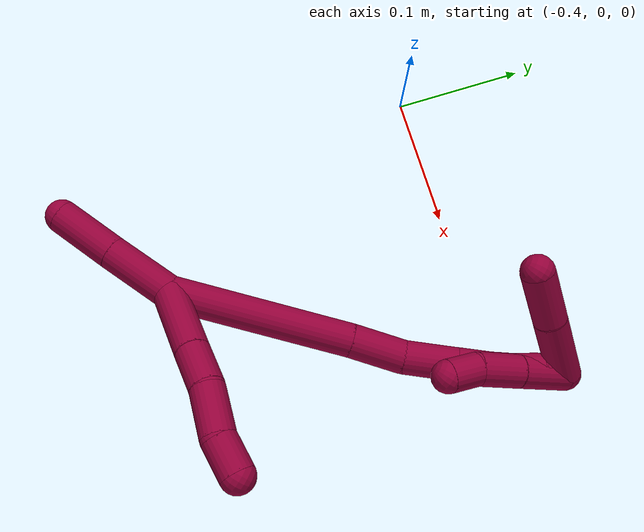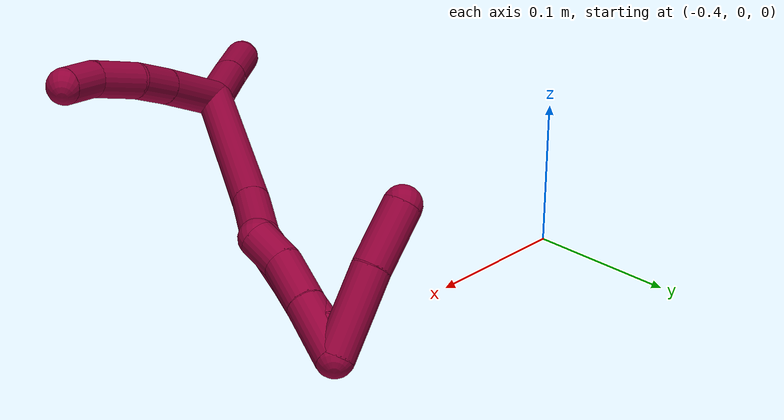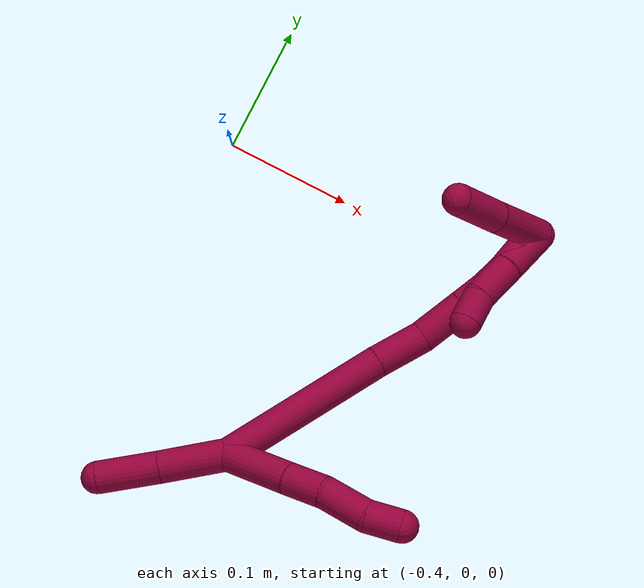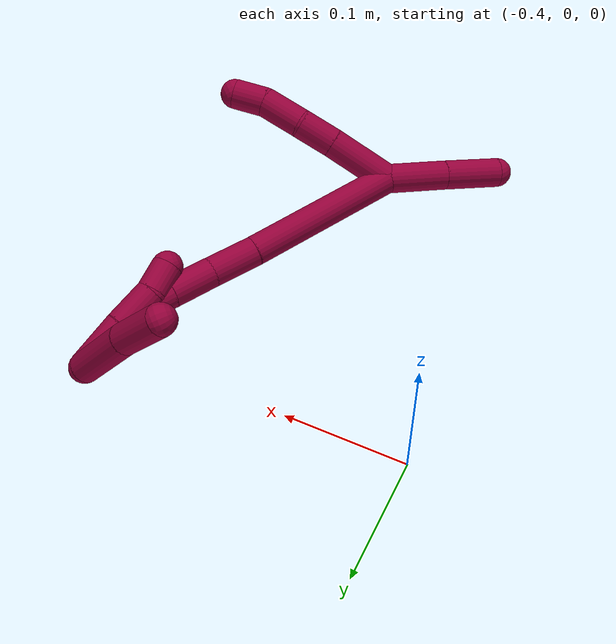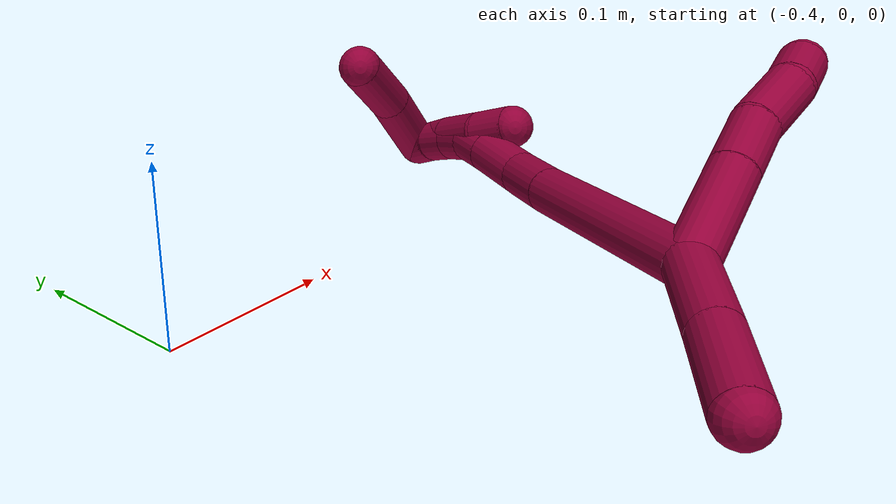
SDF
<sdf version="1.7">
 <world name="default">
  <model name="8">
   <static>0</static>
   <link name="8">
    <collision name="collision-cylinder-e_1_2_8">
     <pose>0.022846 -0.004026 -0.01555 2.88826 0.957988 2.66064</pose>
     <geometry><cylinder><radius>0.0125</radius><length>0.055856</length></cylinder></geometry>
     <surface>
      <friction><ode><mu>1.16</mu><mu2>1.16</mu2><slip1>0</slip1><slip2>0</slip2></ode></friction>
      <contact><ode><kp>1e+06</kp><kd>1</kd><max_vel>0</max_vel><min_depth>0.001</min_depth></ode></contact>
     </surface>
    </collision>
    <visual name="visual-cylinder-e_1_2_8">
     <pose>0.022846 -0.004026 -0.01555 2.88826 0.957988 2.66064</pose>
     <geometry><cylinder><radius>0.0125</radius><length>0.055856</length></cylinder></geometry>
     <material><ambient>0.584314 0 0.227451 1</ambient></material>
    </visual>
    <collision name="collision-cylinder-e_2_8_9">
     <pose>0.058099 -0.010475 -0.040225 2.88199 0.920382 2.6266</pose>
     <geometry><cylinder><radius>0.0125</radius><length>0.031181</length></cylinder></geometry>
     <surface>
      <friction><ode><mu>1.16</mu><mu2>1.16</mu2><slip1>0</slip1><slip2>0</slip2></ode></friction>
      <contact><ode><kp>1e+06</kp><kd>1</kd><max_vel>0</max_vel><min_depth>0.001</min_depth></ode></contact>
     </surface>
    </collision>
    <visual name="visual-cylinder-e_2_8_9">
     <pose>0.058099 -0.010475 -0.040225 2.88199 0.920382 2.6266</pose>
     <geometry><cylinder><radius>0.0125</radius><length>0.031181</length></cylinder></geometry>
     <material><ambient>0.584314 0 0.227451 1</ambient></material>
    </visual>
    <collision name="collision-cylinder-e_3_9_10">
     <pose>0.083976 -0.019291 -0.059424 2.57621 0.845836 1.99535</pose>
     <geometry><cylinder><radius>0.0125</radius><length>0.035988</length></cylinder></geometry>
     <surface>
      <friction><ode><mu>1.16</mu><mu2>1.16</mu2><slip1>0</slip1><slip2>0</slip2></ode></friction>
      <contact><ode><kp>1e+06</kp><kd>1</kd><max_vel>0</max_vel><min_depth>0.001</min_depth></ode></contact>
     </surface>
    </collision>
    <visual name="visual-cylinder-e_3_9_10">
     <pose>0.083976 -0.019291 -0.059424 2.57621 0.845836 1.99535</pose>
     <geometry><cylinder><radius>0.0125</radius><length>0.035988</length></cylinder></geometry>
     <material><ambient>0.584314 0 0.227451 1</ambient></material>
    </visual>
    <collision name="collision-cylinder-e_4_10_6">
     <pose>0.105359 -0.029316 -0.079799 2.80251 0.627073 2.17005</pose>
     <geometry><cylinder><radius>0.0125</radius><length>0.026975</length></cylinder></geometry>
     <surface>
      <friction><ode><mu>1.16</mu><mu2>1.16</mu2><slip1>0</slip1><slip2>0</slip2></ode></friction>
      <contact><ode><kp>1e+06</kp><kd>1</kd><max_vel>0</max_vel><min_depth>0.001</min_depth></ode></contact>
     </surface>
    </collision>
    <visual name="visual-cylinder-e_4_10_6">
     <pose>0.105359 -0.029316 -0.079799 2.80251 0.627073 2.17005</pose>
     <geometry><cylinder><radius>0.0125</radius><length>0.026975</length></cylinder></geometry>
     <material><ambient>0.584314 0 0.227451 1</ambient></material>
    </visual>
    <collision name="collision-cylinder-e_1_2_11">
     <pose>-0.009108 -0.002206 0.024156 0.091063 -0.359198 -0.016544</pose>
     <geometry><cylinder><radius>0.0125</radius><length>0.051821</length></cylinder></geometry>
     <surface>
      <friction><ode><mu>1.16</mu><mu2>1.16</mu2><slip1>0</slip1><slip2>0</slip2></ode></friction>
      <contact><ode><kp>1e+06</kp><kd>1</kd><max_vel>0</max_vel><min_depth>0.001</min_depth></ode></contact>
     </surface>
    </collision>
    <visual name="visual-cylinder-e_1_2_11">
     <pose>-0.009108 -0.002206 0.024156 0.091063 -0.359198 -0.016544</pose>
     <geometry><cylinder><radius>0.0125</radius><length>0.051821</length></cylinder></geometry>
     <material><ambient>0.584314 0 0.227451 1</ambient></material>
    </visual>
    <collision name="collision-cylinder-e_2_11_5">
     <pose>-0.026971 -0.006113 0.07069 0.075863 -0.371959 -0.014281</pose>
     <geometry><cylinder><radius>0.0125</radius><length>0.048179</length></cylinder></geometry>
     <surface>
      <friction><ode><mu>1.16</mu><mu2>1.16</mu2><slip1>0</slip1><slip2>0</slip2></ode></friction>
      <contact><ode><kp>1e+06</kp><kd>1</kd><max_vel>0</max_vel><min_depth>0.001</min_depth></ode></contact>
     </surface>
    </collision>
    <visual name="visual-cylinder-e_2_11_5">
     <pose>-0.026971 -0.006113 0.07069 0.075863 -0.371959 -0.014281</pose>
     <geometry><cylinder><radius>0.0125</radius><length>0.048179</length></cylinder></geometry>
     <material><ambient>0.584314 0 0.227451 1</ambient></material>
    </visual>
    <collision name="collision-cylinder-e_1_2_12">
     <pose>-0.001257 0.019692 -0.064053 -2.84333 -0.018754 0.124666</pose>
     <geometry><cylinder><radius>0.0125</radius><length>0.134047</length></cylinder></geometry>
     <surface>
      <friction><ode><mu>1.16</mu><mu2>1.16</mu2><slip1>0</slip1><slip2>0</slip2></ode></friction>
      <contact><ode><kp>1e+06</kp><kd>1</kd><max_vel>0</max_vel><min_depth>0.001</min_depth></ode></contact>
     </surface>
    </collision>
    <visual name="visual-cylinder-e_1_2_12">
     <pose>-0.001257 0.019692 -0.064053 -2.84333 -0.018754 0.124666</pose>
     <geometry><cylinder><radius>0.0125</radius><length>0.134047</length></cylinder></geometry>
     <material><ambient>0.584314 0 0.227451 1</ambient></material>
    </visual>
    <collision name="collision-cylinder-e_2_12_13">
     <pose>-0.002228 0.044527 -0.147403 -2.88111 0.014337 -0.10935</pose>
     <geometry><cylinder><radius>0.0125</radius><length>0.039945</length></cylinder></geometry>
     <surface>
      <friction><ode><mu>1.16</mu><mu2>1.16</mu2><slip1>0</slip1><slip2>0</slip2></ode></friction>
      <contact><ode><kp>1e+06</kp><kd>1</kd><max_vel>0</max_vel><min_depth>0.001</min_depth></ode></contact>
     </surface>
    </collision>
    <visual name="visual-cylinder-e_2_12_13">
     <pose>-0.002228 0.044527 -0.147403 -2.88111 0.014337 -0.10935</pose>
     <geometry><cylinder><radius>0.0125</radius><length>0.039945</length></cylinder></geometry>
     <material><ambient>0.584314 0 0.227451 1</ambient></material>
    </visual>
    <collision name="collision-cylinder-e_3_13_14">
     <pose>-0.000961 0.058337 -0.184041 -2.67814 0.050494 -0.213221</pose>
     <geometry><cylinder><radius>0.0125</radius><length>0.038822</length></cylinder></geometry>
     <surface>
      <friction><ode><mu>1.16</mu><mu2>1.16</mu2><slip1>0</slip1><slip2>0</slip2></ode></friction>
      <contact><ode><kp>1e+06</kp><kd>1</kd><max_vel>0</max_vel><min_depth>0.001</min_depth></ode></contact>
     </surface>
    </collision>
    <visual name="visual-cylinder-e_3_13_14">
     <pose>-0.000961 0.058337 -0.184041 -2.67814 0.050494 -0.213221</pose>
     <geometry><cylinder><radius>0.0125</radius><length>0.038822</length></cylinder></geometry>
     <material><ambient>0.584314 0 0.227451 1</ambient></material>
    </visual>
    <collision name="collision-cylinder-e_4_14_15">
     <pose>0.000318 0.072212 -0.211965 -2.68428 0.025437 -0.109197</pose>
     <geometry><cylinder><radius>0.0125</radius><length>0.023598</length></cylinder></geometry>
     <surface>
      <friction><ode><mu>1.16</mu><mu2>1.16</mu2><slip1>0</slip1><slip2>0</slip2></ode></friction>
      <contact><ode><kp>1e+06</kp><kd>1</kd><max_vel>0</max_vel><min_depth>0.001</min_depth></ode></contact>
     </surface>
    </collision>
    <visual name="visual-cylinder-e_4_14_15">
     <pose>0.000318 0.072212 -0.211965 -2.68428 0.025437 -0.109197</pose>
     <geometry><cylinder><radius>0.0125</radius><length>0.023598</length></cylinder></geometry>
     <material><ambient>0.584314 0 0.227451 1</ambient></material>
    </visual>
    <collision name="collision-cylinder-e_5_15_16">
     <pose>-0.001757 0.08119 -0.231519 -2.74367 -0.239461 1.07594</pose>
     <geometry><cylinder><radius>0.0125</radius><length>0.020033</length></cylinder></geometry>
     <surface>
      <friction><ode><mu>1.16</mu><mu2>1.16</mu2><slip1>0</slip1><slip2>0</slip2></ode></friction>
      <contact><ode><kp>1e+06</kp><kd>1</kd><max_vel>0</max_vel><min_depth>0.001</min_depth></ode></contact>
     </surface>
    </collision>
    <visual name="visual-cylinder-e_5_15_16">
     <pose>-0.001757 0.08119 -0.231519 -2.74367 -0.239461 1.07594</pose>
     <geometry><cylinder><radius>0.0125</radius><length>0.020033</length></cylinder></geometry>
     <material><ambient>0.584314 0 0.227451 1</ambient></material>
    </visual>
    <collision name="collision-cylinder-e_6_16_17">
     <pose>-0.007558 0.088954 -0.249045 -2.70495 -0.348005 1.34006</pose>
     <geometry><cylinder><radius>0.0125</radius><length>0.020087</length></cylinder></geometry>
     <surface>
      <friction><ode><mu>1.16</mu><mu2>1.16</mu2><slip1>0</slip1><slip2>0</slip2></ode></friction>
      <contact><ode><kp>1e+06</kp><kd>1</kd><max_vel>0</max_vel><min_depth>0.001</min_depth></ode></contact>
     </surface>
    </collision>
    <visual name="visual-cylinder-e_6_16_17">
     <pose>-0.007558 0.088954 -0.249045 -2.70495 -0.348005 1.34006</pose>
     <geometry><cylinder><radius>0.0125</radius><length>0.020087</length></cylinder></geometry>
     <material><ambient>0.584314 0 0.227451 1</ambient></material>
    </visual>
    <collision name="collision-cylinder-e_7_17_1">
     <pose>-0.014802 0.095804 -0.268322 -2.88113 -0.331528 1.81319</pose>
     <geometry><cylinder><radius>0.0125</radius><length>0.023467</length></cylinder></geometry>
     <surface>
      <friction><ode><mu>1.16</mu><mu2>1.16</mu2><slip1>0</slip1><slip2>0</slip2></ode></friction>
      <contact><ode><kp>1e+06</kp><kd>1</kd><max_vel>0</max_vel><min_depth>0.001</min_depth></ode></contact>
     </surface>
    </collision>
    <visual name="visual-cylinder-e_7_17_1">
     <pose>-0.014802 0.095804 -0.268322 -2.88113 -0.331528 1.81319</pose>
     <geometry><cylinder><radius>0.0125</radius><length>0.023467</length></cylinder></geometry>
     <material><ambient>0.584314 0 0.227451 1</ambient></material>
    </visual>
    <collision name="collision-cylinder-e_1_1_18">
     <pose>-0.010133 0.115394 -0.257544 -0.66139 0.302053 -0.104396</pose>
     <geometry><cylinder><radius>0.0125</radius><length>0.057069</length></cylinder></geometry>
     <surface>
      <friction><ode><mu>1.16</mu><mu2>1.16</mu2><slip1>0</slip1><slip2>0</slip2></ode></friction>
      <contact><ode><kp>1e+06</kp><kd>1</kd><max_vel>0</max_vel><min_depth>0.001</min_depth></ode></contact>
     </surface>
    </collision>
    <visual name="visual-cylinder-e_1_1_18">
     <pose>-0.010133 0.115394 -0.257544 -0.66139 0.302053 -0.104396</pose>
     <geometry><cylinder><radius>0.0125</radius><length>0.057069</length></cylinder></geometry>
     <material><ambient>0.584314 0 0.227451 1</ambient></material>
    </visual>
    <collision name="collision-cylinder-e_2_18_4">
     <pose>0.002923 0.145123 -0.219584 -0.668302 0.214414 -0.07469</pose>
     <geometry><cylinder><radius>0.0125</radius><length>0.042931</length></cylinder></geometry>
     <surface>
      <friction><ode><mu>1.16</mu><mu2>1.16</mu2><slip1>0</slip1><slip2>0</slip2></ode></friction>
      <contact><ode><kp>1e+06</kp><kd>1</kd><max_vel>0</max_vel><min_depth>0.001</min_depth></ode></contact>
     </surface>
    </collision>
    <visual name="visual-cylinder-e_2_18_4">
     <pose>0.002923 0.145123 -0.219584 -0.668302 0.214414 -0.07469</pose>
     <geometry><cylinder><radius>0.0125</radius><length>0.042931</length></cylinder></geometry>
     <material><ambient>0.584314 0 0.227451 1</ambient></material>
    </visual>
    <collision name="collision-cylinder-e_1_1_19">
     <pose>-0.010831 0.092554 -0.260985 0.32614 0.387999 0.064628</pose>
     <geometry><cylinder><radius>0.0125</radius><length>0.041184</length></cylinder></geometry>
     <surface>
      <friction><ode><mu>1.16</mu><mu2>1.16</mu2><slip1>0</slip1><slip2>0</slip2></ode></friction>
      <contact><ode><kp>1e+06</kp><kd>1</kd><max_vel>0</max_vel><min_depth>0.001</min_depth></ode></contact>
     </surface>
    </collision>
    <visual name="visual-cylinder-e_1_1_19">
     <pose>-0.010831 0.092554 -0.260985 0.32614 0.387999 0.064628</pose>
     <geometry><cylinder><radius>0.0125</radius><length>0.041184</length></cylinder></geometry>
     <material><ambient>0.584314 0 0.227451 1</ambient></material>
    </visual>
    <collision name="collision-cylinder-e_2_19_20">
     <pose>0.002581 0.080831 -0.22773 0.353952 0.333925 0.060264</pose>
     <geometry><cylinder><radius>0.0125</radius><length>0.0343</length></cylinder></geometry>
     <surface>
      <friction><ode><mu>1.16</mu><mu2>1.16</mu2><slip1>0</slip1><slip2>0</slip2></ode></friction>
      <contact><ode><kp>1e+06</kp><kd>1</kd><max_vel>0</max_vel><min_depth>0.001</min_depth></ode></contact>
     </surface>
    </collision>
    <visual name="visual-cylinder-e_2_19_20">
     <pose>0.002581 0.080831 -0.22773 0.353952 0.333925 0.060264</pose>
     <geometry><cylinder><radius>0.0125</radius><length>0.0343</length></cylinder></geometry>
     <material><ambient>0.584314 0 0.227451 1</ambient></material>
    </visual>
    <collision name="collision-cylinder-e_3_20_3">
     <pose>0.013897 0.069121 -0.20355 0.59616 0.483236 0.151136</pose>
     <geometry><cylinder><radius>0.0125</radius><length>0.024516</length></cylinder></geometry>
     <surface>
      <friction><ode><mu>1.16</mu><mu2>1.16</mu2><slip1>0</slip1><slip2>0</slip2></ode></friction>
      <contact><ode><kp>1e+06</kp><kd>1</kd><max_vel>0</max_vel><min_depth>0.001</min_depth></ode></contact>
     </surface>
    </collision>
    <visual name="visual-cylinder-e_3_20_3">
     <pose>0.013897 0.069121 -0.20355 0.59616 0.483236 0.151136</pose>
     <geometry><cylinder><radius>0.0125</radius><length>0.024516</length></cylinder></geometry>
     <material><ambient>0.584314 0 0.227451 1</ambient></material>
    </visual>
    <collision name="collision-sphere-3">
     <pose>0.019593 0.063026 -0.194568 0 -0 0</pose>
     <geometry><sphere><radius>0.0125</radius></sphere></geometry>
     <surface>
      <friction><ode><mu>1.16</mu><mu2>1.16</mu2><slip1>0</slip1><slip2>0</slip2></ode></friction>
      <contact><ode><kp>1e+06</kp><kd>1</kd><max_vel>0</max_vel><min_depth>0.001</min_depth></ode></contact>
     </surface>
    </collision>
    <visual name="visual-sphere-3">
     <pose>0.019593 0.063026 -0.194568 0 -0 0</pose>
     <geometry><sphere><radius>0.0125</radius></sphere></geometry>
     <material><ambient>0.584314 0 0.227451 1</ambient></material>
    </visual>
    <collision name="collision-sphere-20">
     <pose>0.008202 0.075215 -0.212532 0 -0 0</pose>
     <geometry><sphere><radius>0.0125</radius></sphere></geometry>
     <surface>
      <friction><ode><mu>1.16</mu><mu2>1.16</mu2><slip1>0</slip1><slip2>0</slip2></ode></friction>
      <contact><ode><kp>1e+06</kp><kd>1</kd><max_vel>0</max_vel><min_depth>0.001</min_depth></ode></contact>
     </surface>
    </collision>
    <visual name="visual-sphere-20">
     <pose>0.008202 0.075215 -0.212532 0 -0 0</pose>
     <geometry><sphere><radius>0.0125</radius></sphere></geometry>
     <material><ambient>0.584314 0 0.227451 1</ambient></material>
    </visual>
    <collision name="collision-sphere-19">
     <pose>-0.00304 0.086447 -0.242929 0 -0 0</pose>
     <geometry><sphere><radius>0.0125</radius></sphere></geometry>
     <surface>
      <friction><ode><mu>1.16</mu><mu2>1.16</mu2><slip1>0</slip1><slip2>0</slip2></ode></friction>
      <contact><ode><kp>1e+06</kp><kd>1</kd><max_vel>0</max_vel><min_depth>0.001</min_depth></ode></contact>
     </surface>
    </collision>
    <visual name="visual-sphere-19">
     <pose>-0.00304 0.086447 -0.242929 0 -0 0</pose>
     <geometry><sphere><radius>0.0125</radius></sphere></geometry>
     <material><ambient>0.584314 0 0.227451 1</ambient></material>
    </visual>
    <collision name="collision-sphere-11">
     <pose>-0.018216 -0.004412 0.048312 0 -0 0</pose>
     <geometry><sphere><radius>0.0125</radius></sphere></geometry>
     <surface>
      <friction><ode><mu>1.16</mu><mu2>1.16</mu2><slip1>0</slip1><slip2>0</slip2></ode></friction>
      <contact><ode><kp>1e+06</kp><kd>1</kd><max_vel>0</max_vel><min_depth>0.001</min_depth></ode></contact>
     </surface>
    </collision>
    <visual name="visual-sphere-11">
     <pose>-0.018216 -0.004412 0.048312 0 -0 0</pose>
     <geometry><sphere><radius>0.0125</radius></sphere></geometry>
     <material><ambient>0.584314 0 0.227451 1</ambient></material>
    </visual>
    <collision name="collision-sphere-6">
     <pose>0.113273 -0.032949 -0.090099 0 -0 0</pose>
     <geometry><sphere><radius>0.0125</radius></sphere></geometry>
     <surface>
      <friction><ode><mu>1.16</mu><mu2>1.16</mu2><slip1>0</slip1><slip2>0</slip2></ode></friction>
      <contact><ode><kp>1e+06</kp><kd>1</kd><max_vel>0</max_vel><min_depth>0.001</min_depth></ode></contact>
     </surface>
    </collision>
    <visual name="visual-sphere-6">
     <pose>0.113273 -0.032949 -0.090099 0 -0 0</pose>
     <geometry><sphere><radius>0.0125</radius></sphere></geometry>
     <material><ambient>0.584314 0 0.227451 1</ambient></material>
    </visual>
    <collision name="collision-sphere-10">
     <pose>0.097445 -0.025684 -0.069499 0 -0 0</pose>
     <geometry><sphere><radius>0.0125</radius></sphere></geometry>
     <surface>
      <friction><ode><mu>1.16</mu><mu2>1.16</mu2><slip1>0</slip1><slip2>0</slip2></ode></friction>
      <contact><ode><kp>1e+06</kp><kd>1</kd><max_vel>0</max_vel><min_depth>0.001</min_depth></ode></contact>
     </surface>
    </collision>
    <visual name="visual-sphere-10">
     <pose>0.097445 -0.025684 -0.069499 0 -0 0</pose>
     <geometry><sphere><radius>0.0125</radius></sphere></geometry>
     <material><ambient>0.584314 0 0.227451 1</ambient></material>
    </visual>
    <collision name="collision-sphere-9">
     <pose>0.070507 -0.012899 -0.049349 0 -0 0</pose>
     <geometry><sphere><radius>0.0125</radius></sphere></geometry>
     <surface>
      <friction><ode><mu>1.16</mu><mu2>1.16</mu2><slip1>0</slip1><slip2>0</slip2></ode></friction>
      <contact><ode><kp>1e+06</kp><kd>1</kd><max_vel>0</max_vel><min_depth>0.001</min_depth></ode></contact>
     </surface>
    </collision>
    <visual name="visual-sphere-9">
     <pose>0.070507 -0.012899 -0.049349 0 -0 0</pose>
     <geometry><sphere><radius>0.0125</radius></sphere></geometry>
     <material><ambient>0.584314 0 0.227451 1</ambient></material>
    </visual>
    <collision name="collision-sphere-2">
     <geometry><sphere><radius>0.0125</radius></sphere></geometry>
     <surface>
      <friction><ode><mu>1.16</mu><mu2>1.16</mu2><slip1>0</slip1><slip2>0</slip2></ode></friction>
      <contact><ode><kp>1e+06</kp><kd>1</kd><max_vel>0</max_vel><min_depth>0.001</min_depth></ode></contact>
     </surface>
    </collision>
    <visual name="visual-sphere-2">
     <geometry><sphere><radius>0.0125</radius></sphere></geometry>
     <material><ambient>0.584314 0 0.227451 1</ambient></material>
    </visual>
    <collision name="collision-sphere-8">
     <pose>0.045692 -0.008052 -0.031101 0 -0 0</pose>
     <geometry><sphere><radius>0.0125</radius></sphere></geometry>
     <surface>
      <friction><ode><mu>1.16</mu><mu2>1.16</mu2><slip1>0</slip1><slip2>0</slip2></ode></friction>
      <contact><ode><kp>1e+06</kp><kd>1</kd><max_vel>0</max_vel><min_depth>0.001</min_depth></ode></contact>
     </surface>
    </collision>
    <visual name="visual-sphere-8">
     <pose>0.045692 -0.008052 -0.031101 0 -0 0</pose>
     <geometry><sphere><radius>0.0125</radius></sphere></geometry>
     <material><ambient>0.584314 0 0.227451 1</ambient></material>
    </visual>
    <collision name="collision-sphere-5">
     <pose>-0.035727 -0.007814 0.093068 0 -0 0</pose>
     <geometry><sphere><radius>0.0125</radius></sphere></geometry>
     <surface>
      <friction><ode><mu>1.16</mu><mu2>1.16</mu2><slip1>0</slip1><slip2>0</slip2></ode></friction>
      <contact><ode><kp>1e+06</kp><kd>1</kd><max_vel>0</max_vel><min_depth>0.001</min_depth></ode></contact>
     </surface>
    </collision>
    <visual name="visual-sphere-5">
     <pose>-0.035727 -0.007814 0.093068 0 -0 0</pose>
     <geometry><sphere><radius>0.0125</radius></sphere></geometry>
     <material><ambient>0.584314 0 0.227451 1</ambient></material>
    </visual>
    <collision name="collision-sphere-12">
     <pose>-0.002514 0.039384 -0.128106 0 -0 0</pose>
     <geometry><sphere><radius>0.0125</radius></sphere></geometry>
     <surface>
      <friction><ode><mu>1.16</mu><mu2>1.16</mu2><slip1>0</slip1><slip2>0</slip2></ode></friction>
      <contact><ode><kp>1e+06</kp><kd>1</kd><max_vel>0</max_vel><min_depth>0.001</min_depth></ode></contact>
     </surface>
    </collision>
    <visual name="visual-sphere-12">
     <pose>-0.002514 0.039384 -0.128106 0 -0 0</pose>
     <geometry><sphere><radius>0.0125</radius></sphere></geometry>
     <material><ambient>0.584314 0 0.227451 1</ambient></material>
    </visual>
    <collision name="collision-sphere-13">
     <pose>-0.001941 0.049671 -0.1667 0 -0 0</pose>
     <geometry><sphere><radius>0.0125</radius></sphere></geometry>
     <surface>
      <friction><ode><mu>1.16</mu><mu2>1.16</mu2><slip1>0</slip1><slip2>0</slip2></ode></friction>
      <contact><ode><kp>1e+06</kp><kd>1</kd><max_vel>0</max_vel><min_depth>0.001</min_depth></ode></contact>
     </surface>
    </collision>
    <visual name="visual-sphere-13">
     <pose>-0.001941 0.049671 -0.1667 0 -0 0</pose>
     <geometry><sphere><radius>0.0125</radius></sphere></geometry>
     <material><ambient>0.584314 0 0.227451 1</ambient></material>
    </visual>
    <collision name="collision-sphere-14">
     <pose>1.8e-05 0.067003 -0.201382 0 -0 0</pose>
     <geometry><sphere><radius>0.0125</radius></sphere></geometry>
     <surface>
      <friction><ode><mu>1.16</mu><mu2>1.16</mu2><slip1>0</slip1><slip2>0</slip2></ode></friction>
      <contact><ode><kp>1e+06</kp><kd>1</kd><max_vel>0</max_vel><min_depth>0.001</min_depth></ode></contact>
     </surface>
    </collision>
    <visual name="visual-sphere-14">
     <pose>1.8e-05 0.067003 -0.201382 0 -0 0</pose>
     <geometry><sphere><radius>0.0125</radius></sphere></geometry>
     <material><ambient>0.584314 0 0.227451 1</ambient></material>
    </visual>
    <collision name="collision-sphere-15">
     <pose>0.000618 0.07742 -0.222549 0 -0 0</pose>
     <geometry><sphere><radius>0.0125</radius></sphere></geometry>
     <surface>
      <friction><ode><mu>1.16</mu><mu2>1.16</mu2><slip1>0</slip1><slip2>0</slip2></ode></friction>
      <contact><ode><kp>1e+06</kp><kd>1</kd><max_vel>0</max_vel><min_depth>0.001</min_depth></ode></contact>
     </surface>
    </collision>
    <visual name="visual-sphere-15">
     <pose>0.000618 0.07742 -0.222549 0 -0 0</pose>
     <geometry><sphere><radius>0.0125</radius></sphere></geometry>
     <material><ambient>0.584314 0 0.227451 1</ambient></material>
    </visual>
    <collision name="collision-sphere-16">
     <pose>-0.004133 0.084961 -0.240489 0 -0 0</pose>
     <geometry><sphere><radius>0.0125</radius></sphere></geometry>
     <surface>
      <friction><ode><mu>1.16</mu><mu2>1.16</mu2><slip1>0</slip1><slip2>0</slip2></ode></friction>
      <contact><ode><kp>1e+06</kp><kd>1</kd><max_vel>0</max_vel><min_depth>0.001</min_depth></ode></contact>
     </surface>
    </collision>
    <visual name="visual-sphere-16">
     <pose>-0.004133 0.084961 -0.240489 0 -0 0</pose>
     <geometry><sphere><radius>0.0125</radius></sphere></geometry>
     <material><ambient>0.584314 0 0.227451 1</ambient></material>
    </visual>
    <collision name="collision-sphere-17">
     <pose>-0.010983 0.092947 -0.257601 0 -0 0</pose>
     <geometry><sphere><radius>0.0125</radius></sphere></geometry>
     <surface>
      <friction><ode><mu>1.16</mu><mu2>1.16</mu2><slip1>0</slip1><slip2>0</slip2></ode></friction>
      <contact><ode><kp>1e+06</kp><kd>1</kd><max_vel>0</max_vel><min_depth>0.001</min_depth></ode></contact>
     </surface>
    </collision>
    <visual name="visual-sphere-17">
     <pose>-0.010983 0.092947 -0.257601 0 -0 0</pose>
     <geometry><sphere><radius>0.0125</radius></sphere></geometry>
     <material><ambient>0.584314 0 0.227451 1</ambient></material>
    </visual>
    <collision name="collision-sphere-1">
     <pose>-0.018622 0.098661 -0.279042 0 -0 0</pose>
     <geometry><sphere><radius>0.0125</radius></sphere></geometry>
     <surface>
      <friction><ode><mu>1.16</mu><mu2>1.16</mu2><slip1>0</slip1><slip2>0</slip2></ode></friction>
      <contact><ode><kp>1e+06</kp><kd>1</kd><max_vel>0</max_vel><min_depth>0.001</min_depth></ode></contact>
     </surface>
    </collision>
    <visual name="visual-sphere-1">
     <pose>-0.018622 0.098661 -0.279042 0 -0 0</pose>
     <geometry><sphere><radius>0.0125</radius></sphere></geometry>
     <material><ambient>0.584314 0 0.227451 1</ambient></material>
    </visual>
    <collision name="collision-sphere-18">
     <pose>-0.001645 0.132127 -0.236046 0 -0 0</pose>
     <geometry><sphere><radius>0.0125</radius></sphere></geometry>
     <surface>
      <friction><ode><mu>1.16</mu><mu2>1.16</mu2><slip1>0</slip1><slip2>0</slip2></ode></friction>
      <contact><ode><kp>1e+06</kp><kd>1</kd><max_vel>0</max_vel><min_depth>0.001</min_depth></ode></contact>
     </surface>
    </collision>
    <visual name="visual-sphere-18">
     <pose>-0.001645 0.132127 -0.236046 0 -0 0</pose>
     <geometry><sphere><radius>0.0125</radius></sphere></geometry>
     <material><ambient>0.584314 0 0.227451 1</ambient></material>
    </visual>
    <collision name="collision-sphere-4">
     <pose>0.00749 0.15812 -0.203122 0 -0 0</pose>
     <geometry><sphere><radius>0.0125</radius></sphere></geometry>
     <surface>
      <friction><ode><mu>1.16</mu><mu2>1.16</mu2><slip1>0</slip1><slip2>0</slip2></ode></friction>
      <contact><ode><kp>1e+06</kp><kd>1</kd><max_vel>0</max_vel><min_depth>0.001</min_depth></ode></contact>
     </surface>
    </collision>
    <visual name="visual-sphere-4">
     <pose>0.00749 0.15812 -0.203122 0 -0 0</pose>
     <geometry><sphere><radius>0.0125</radius></sphere></geometry>
     <material><ambient>0.584314 0 0.227451 1</ambient></material>
    </visual>
    <inertial>
     <pose>0.007852 0.043597 -0.122653 0 -0 0</pose>
     <mass>0.75</mass>
     <inertia>
      <ixx>0.000314</ixx>
      <ixy>0</ixy>
      <ixz>0</ixz>
      <iyy>-8.2e-05</iyy>
      <iyz>0</iyz>
      <izz>-0.000101</izz>
     </inertia>
    </inertial>
   </link>
   <pose>-0.289108 -0.215061 0.074746 1.03603 -0.987531 -0.349392</pose>
  </model>
 </world>
</sdf>
